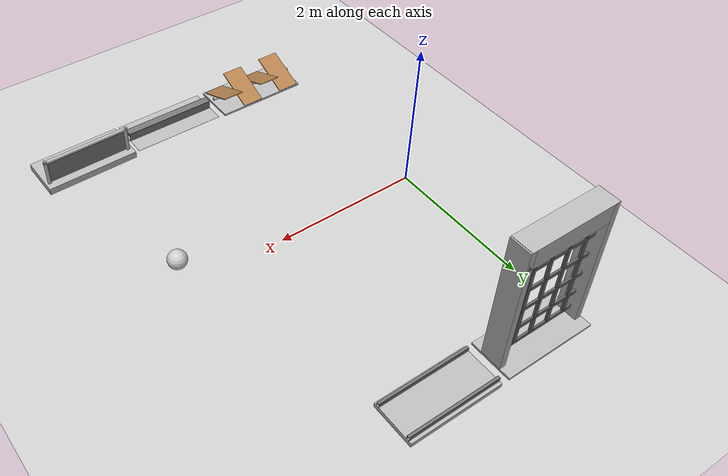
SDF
<sdf version="1.5">
 <world name="default">
  <include><uri>model://ball</uri><pose>3.29 -0.31 0.197 0 0 0</pose></include>
  <model name="ground_plane">
   <static>1</static>
   <link name="link">
    <collision name="collision">
     <geometry><plane><normal>0 0 1</normal><size>100 100</size></plane></geometry>
     <surface><friction><ode><mu>100</mu><mu2>50</mu2></ode></friction></surface>
    </collision>
    <visual name="visual">
     <cast_shadows>0</cast_shadows>
     <geometry><plane><normal>0 0 1</normal><size>100 100</size></plane></geometry>
     <material>
      <script><uri>file://media/materials/scripts/gazebo.material</uri><name>Gazebo/Grey</name></script>
     </material>
    </visual>
   </link>
  </model>
  <model name="frc2016_rockwall">
   <pose>2.0377 -2.705 0.027 0 0 0</pose>
   <static>1</static>
   <link name="link">
    <inertial>
     <mass>10</mass>
     <inertia><ixx>0.327091</ixx><ixy>0</ixy><ixz>0</ixz><iyy>1.37417</iyy><iyz>0</iyz><izz>1.64109</izz></inertia>
    </inertial>
    <visual name="platform">
     <pose>0 0 0.06432 0 -0 0</pose>
     <geometry><box><size>1.27 0.5969 0.003175</size></box></geometry>
    </visual>
    <collision name="platform">
     <pose>0 0 0.06432 0 -0 0</pose>
     <geometry><box><size>1.27 0.5969 0.003175</size></box></geometry>
    </collision>
    <visual name="up1">
     <pose>0 0.05166 0.12537 0 -0 0</pose>
     <geometry><box><size>1.27 0.00462 0.11892</size></box></geometry>
     <material><ambient>0.46 0.46 0.46 1</ambient><diffuse>0.46 0.46 0.46 1</diffuse></material>
    </visual>
    <collision name="up1">
     <pose>0 0.05166 0.12537 0 -0 0</pose>
     <geometry><box><size>1.27 0.00462 0.11892</size></box></geometry>
    </collision>
    <visual name="up2">
     <pose>0 -0.05801 0.12537 0 -0 0</pose>
     <geometry><box><size>1.27 0.00462 0.11892</size></box></geometry>
     <material><ambient>0.46 0.46 0.46 1</ambient><diffuse>0.46 0.46 0.46 1</diffuse></material>
    </visual>
    <collision name="up2">
     <pose>0 -0.05801 0.12537 0 -0 0</pose>
     <geometry><box><size>1.27 0.00462 0.11892</size></box></geometry>
    </collision>
    <visual name="top">
     <pose>0 -0.00249 0.18252 0 -0 0</pose>
     <geometry><box><size>1.27 0.1143 0.00462</size></box></geometry>
     <material><ambient>0.46 0.46 0.46 1</ambient><diffuse>0.46 0.46 0.46 1</diffuse></material>
    </visual>
    <collision name="top">
     <pose>0 -0.00249 0.18252 0 -0 0</pose>
     <geometry><box><size>1.27 0.1143 0.00462</size></box></geometry>
    </collision>
   </link>
   <pose>-0.584117 1 0 0 -0 0</pose>
  </model>
  <model name="frc2016_moat">
   <static>1</static>
   <pose>1.93647 2.80928 -0.019486 0 -0 0</pose>
   <link name="link">
    <inertial>
     <mass>10</mass>
     <pose>0 0 0.06738 0 -0 0</pose>
     <inertia><ixx>0.312195</ixx><ixy>0</ixy><ixz>0</ixz><iyy>1.35927</iyy><iyz>0</iyz><izz>1.64109</izz></inertia>
    </inertial>
    <visual name="platform">
     <pose>0 0 0.0381 0 -0 0</pose>
     <geometry><box><size>1.27 0.5969 0.0762</size></box></geometry>
    </visual>
    <collision name="platform">
     <pose>0 0 0.0381 0 -0 0</pose>
     <geometry><box><size>1.27 0.5969 0.0762</size></box></geometry>
    </collision>
    <visual name="tube1_side1">
     <pose>0 -0.25876 0.10301 0 -0 0</pose>
     <geometry><box><size>1.27 0.003175 0.0635</size></box></geometry>
     <material><ambient>0.46 0.46 0.46 1</ambient><diffuse>0.46 0.46 0.46 1</diffuse></material>
    </visual>
    <collision name="tube1_side1">
     <pose>0 -0.25876 0.10301 0 -0 0</pose>
     <geometry><box><size>1.27 0.003175 0.0635</size></box></geometry>
    </collision>
    <visual name="tube1_side2">
     <pose>0 -0.22384 0.10301 0 -0 0</pose>
     <geometry><box><size>1.27 0.003175 0.0635</size></box></geometry>
     <material><ambient>0.46 0.46 0.46 1</ambient><diffuse>0.46 0.46 0.46 1</diffuse></material>
    </visual>
    <collision name="tube1_side2">
     <pose>0 -0.22384 0.10301 0 -0 0</pose>
     <geometry><box><size>1.27 0.003175 0.0635</size></box></geometry>
    </collision>
    <visual name="tube1_top">
     <pose>0 -0.2413 0.13317 0 -0 0</pose>
     <geometry><box><size>1.27 0.0381 0.003175</size></box></geometry>
     <material><ambient>0.46 0.46 0.46 1</ambient><diffuse>0.46 0.46 0.46 1</diffuse></material>
    </visual>
    <collision name="tube1_top">
     <pose>0 -0.2413 0.13317 0 -0 0</pose>
     <geometry><box><size>1.27 0.0381 0.003175</size></box></geometry>
    </collision>
    <visual name="tube2_side1">
     <pose>0 0.22384 0.10301 0 -0 0</pose>
     <geometry><box><size>1.27 0.003175 0.0635</size></box></geometry>
     <material><ambient>0.46 0.46 0.46 1</ambient><diffuse>0.46 0.46 0.46 1</diffuse></material>
    </visual>
    <collision name="tube2_side1">
     <pose>0 0.22384 0.10301 0 -0 0</pose>
     <geometry><box><size>1.27 0.003175 0.0635</size></box></geometry>
    </collision>
    <visual name="tube2_side2">
     <pose>0 0.25876 0.10301 0 -0 0</pose>
     <geometry><box><size>1.27 0.003175 0.0635</size></box></geometry>
     <material><ambient>0.46 0.46 0.46 1</ambient><diffuse>0.46 0.46 0.46 1</diffuse></material>
    </visual>
    <collision name="tube2_side2">
     <pose>0 0.25876 0.10301 0 -0 0</pose>
     <geometry><box><size>1.27 0.003175 0.0635</size></box></geometry>
    </collision>
    <visual name="tube2_top">
     <pose>0 0.2413 0.13317 0 -0 0</pose>
     <geometry><box><size>1.27 0.0381 0.003175</size></box></geometry>
     <material><ambient>0.46 0.46 0.46 1</ambient><diffuse>0.46 0.46 0.46 1</diffuse></material>
    </visual>
    <collision name="tube2_top">
     <pose>0 0.2413 0.13317 0 -0 0</pose>
     <geometry><box><size>1.27 0.0381 0.003175</size></box></geometry>
    </collision>
   </link>
   <pose>1.49502 1 0 0 -0 0</pose>
  </model>
  <model name="frc2016_portcullis_0">
   <pose>0.5785 2.827 0 0 0 0.0</pose>
   <link name="base">
    <inertial>
     <mass>50</mass>
     <pose>0 0 1.02941 0 -0 0</pose>
     <inertia><ixx>3.81711</ixx><ixy>0</ixy><ixz>0</ixz><iyy>4.87698</iyy><iyz>0</iyz><izz>1.6283</izz></inertia>
    </inertial>
    <visual name="platform">
     <pose>0 0 0.07284 0 -0 0</pose>
     <geometry><box><size>1.27 0.5842 0.03</size></box></geometry>
    </visual>
    <collision name="platform">
     <pose>0 0 0.07284 0 -0 0</pose>
     <geometry><box><size>1.27 0.5842 0.03</size></box></geometry>
    </collision>
    <visual name="left_column">
     <pose>0.59284 0 0.99042 0 -0 0</pose>
     <geometry><box><size>0.08375 0.28575 1.83198</size></box></geometry>
    </visual>
    <collision name="left_column">
     <pose>0.59284 0 0.99042 0 -0 0</pose>
     <geometry><box><size>0.08375 0.28575 1.83198</size></box></geometry>
    </collision>
    <visual name="right_column">
     <pose>-0.57759 0 0.99042 0 -0 0</pose>
     <geometry><box><size>0.08375 0.28575 1.83198</size></box></geometry>
    </visual>
    <collision name="right_column">
     <pose>-0.57759 0 0.99042 0 -0 0</pose>
     <geometry><box><size>0.08375 0.28575 1.83198</size></box></geometry>
    </collision>
    <visual name="top">
     <pose>-0.00034 0 1.77722 0 -0 0</pose>
     <geometry><box><size>1.22962 0.28575 0.26657</size></box></geometry>
    </visual>
    <collision name="top">
     <pose>-0.00034 0 1.77722 0 -0 0</pose>
     <geometry><box><size>1.22962 0.28575 0.26657</size></box></geometry>
    </collision>
    <visual name="castor1">
     <pose>-0.45651 -0.16234 0.03272 0 -0 0</pose>
     <geometry><sphere><radius>0.03272</radius></sphere></geometry>
    </visual>
    <collision name="castor1">
     <pose>-0.45651 -0.16234 0.03272 0 -0 0</pose>
     <geometry><sphere><radius>0.03272</radius></sphere></geometry>
    </collision>
    <visual name="castor2">
     <pose>-0.27883 0.21836 0.03272 0 -0 0</pose>
     <geometry><sphere><radius>0.03272</radius></sphere></geometry>
    </visual>
    <collision name="castor2">
     <pose>-0.27883 0.21836 0.03272 0 -0 0</pose>
     <geometry><sphere><radius>0.03272</radius></sphere></geometry>
    </collision>
    <visual name="castor3">
     <pose>0.28083 0.21906 0.03272 0 -0 0</pose>
     <geometry><sphere><radius>0.03272</radius></sphere></geometry>
    </visual>
    <collision name="castor3">
     <pose>0.28083 0.21906 0.03272 0 -0 0</pose>
     <geometry><sphere><radius>0.03272</radius></sphere></geometry>
    </collision>
    <visual name="castor4">
     <pose>0.45871 -0.16186 0.03272 0 -0 0</pose>
     <geometry><sphere><radius>0.03272</radius></sphere></geometry>
    </visual>
    <collision name="castor4">
     <pose>0.45871 -0.16186 0.03272 0 -0 0</pose>
     <geometry><sphere><radius>0.03272</radius></sphere></geometry>
    </collision>
   </link>
   <link name="gate">
    <pose>-0.0287 0.02885 0.93327 0 -0 0</pose>
    <inertial>
     <mass>2</mass>
     <inertia><ixx>3.81711</ixx><ixy>0</ixy><ixz>0</ixz><iyy>4.87698</iyy><iyz>0</iyz><izz>1.6283</izz></inertia>
    </inertial>
    <collision name="collision"><geometry><box><size>1.1938 0.02496 1.45732</size></box></geometry></collision>
    <visual name="horz_1">
     <pose>0 0 -0.70326 0 -0 0</pose>
     <geometry><box><size>1.1938 0.02496 0.0508</size></box></geometry>
     <material><ambient>0.4 0.4 0.4 1</ambient><diffuse>0.4 0.4 0.4 1</diffuse></material>
    </visual>
    <visual name="horz_2">
     <pose>0 0 -0.44926 0 -0 0</pose>
     <geometry><box><size>1.1938 0.02496 0.0508</size></box></geometry>
     <material><ambient>0.4 0.4 0.4 1</ambient><diffuse>0.4 0.4 0.4 1</diffuse></material>
    </visual>
    <visual name="horz_3">
     <pose>0 0 -0.14517 0 -0 0</pose>
     <geometry><box><size>1.1938 0.02496 0.0508</size></box></geometry>
     <material><ambient>0.4 0.4 0.4 1</ambient><diffuse>0.4 0.4 0.4 1</diffuse></material>
    </visual>
    <visual name="horz_4">
     <pose>0 0 0.16034 0 -0 0</pose>
     <geometry><box><size>1.1938 0.02496 0.0508</size></box></geometry>
     <material><ambient>0.4 0.4 0.4 1</ambient><diffuse>0.4 0.4 0.4 1</diffuse></material>
    </visual>
    <visual name="horz_5">
     <pose>0 0 0.46514 0 -0 0</pose>
     <geometry><box><size>1.1938 0.02496 0.0508</size></box></geometry>
     <material><ambient>0.4 0.4 0.4 1</ambient><diffuse>0.4 0.4 0.4 1</diffuse></material>
    </visual>
    <visual name="horz_6">
     <pose>0 0 0.72994 0 -0 0</pose>
     <geometry><box><size>1.1938 0.02496 0.0508</size></box></geometry>
     <material><ambient>0.4 0.4 0.4 1</ambient><diffuse>0.4 0.4 0.4 1</diffuse></material>
    </visual>
    <visual name="vert_1">
     <pose>-0.58448 0 0 0 -0 0</pose>
     <geometry><box><size>0.02495 0.02496 1.45732</size></box></geometry>
     <material><ambient>0.4 0.4 0.4 1</ambient><diffuse>0.4 0.4 0.4 1</diffuse></material>
    </visual>
    <visual name="vert_2">
     <pose>-0.38128 0 0 0 -0 0</pose>
     <geometry><box><size>0.0508 0.02496 1.45732</size></box></geometry>
     <material><ambient>0.4 0.4 0.4 1</ambient><diffuse>0.4 0.4 0.4 1</diffuse></material>
    </visual>
    <visual name="vert_3">
     <pose>-0.12728 0 0 0 -0 0</pose>
     <geometry><box><size>0.0508 0.02496 1.45732</size></box></geometry>
     <material><ambient>0.4 0.4 0.4 1</ambient><diffuse>0.4 0.4 0.4 1</diffuse></material>
    </visual>
    <visual name="vert_4">
     <pose>0.12672 0 0 0 -0 0</pose>
     <geometry><box><size>0.0508 0.02496 1.45732</size></box></geometry>
     <material><ambient>0.4 0.4 0.4 1</ambient><diffuse>0.4 0.4 0.4 1</diffuse></material>
    </visual>
    <visual name="vert_5">
     <pose>0.38072 0 0 0 -0 0</pose>
     <geometry><box><size>0.0508 0.02496 1.45732</size></box></geometry>
     <material><ambient>0.4 0.4 0.4 1</ambient><diffuse>0.4 0.4 0.4 1</diffuse></material>
    </visual>
    <visual name="vert_6">
     <pose>0.58392 0 0 0 -0 0</pose>
     <geometry><box><size>0.02495 0.02496 1.45732</size></box></geometry>
     <material><ambient>0.4 0.4 0.4 1</ambient><diffuse>0.4 0.4 0.4 1</diffuse></material>
    </visual>
   </link>
   <joint name="joint" type="prismatic">
    <parent>base</parent>
    <child>gate</child>
    <axis>
     <xyz>0 0 1</xyz>
     <limit><lower>0</lower><upper>1</upper></limit>
     <use_parent_model_frame>0</use_parent_model_frame>
     <dynamics><spring_reference>0</spring_reference><spring_stiffness>0.2</spring_stiffness></dynamics>
    </axis>
   </joint>
   <pose>1 -3 0 0 -0 0</pose>
  </model>
  <model name="frc2016_chevaldefrise">
   <pose>0.6666 -2.704 -0 0 0 -1e-06</pose>
   <link name="base">
    <inertial>
     <mass>10</mass>
     <pose>0 0 0.15672 0 -0 0</pose>
     <inertia><ixx>0.380221</ixx><ixy>0</ixy><ixz>0</ixz><iyy>1.43365</iyy><iyz>0</iyz><izz>1.64745</izz></inertia>
    </inertial>
    <visual name="platform">
     <pose>0 0 0.073 0 -0 0</pose>
     <geometry><box><size>1.27 0.5969 0.03</size></box></geometry>
    </visual>
    <collision name="platform">
     <pose>0 0 0.073 0 -0 0</pose>
     <geometry><box><size>1.27 0.5969 0.03</size></box></geometry>
    </collision>
    <visual name="bar">
     <pose>0 0 0.16855 0 1.5707 0</pose>
     <geometry><cylinder><radius>0.02108</radius><length>1.273</length></cylinder></geometry>
    </visual>
    <collision name="bar">
     <pose>0 0 0.16855 0 1.5707 0</pose>
     <geometry><cylinder><radius>0.02108</radius><length>1.27</length></cylinder></geometry>
    </collision>
    <visual name="castor1">
     <pose>-0.45653 -0.16581 0.03175 0 -0 0</pose>
     <geometry><sphere><radius>0.03175</radius></sphere></geometry>
    </visual>
    <collision name="castor1">
     <pose>-0.45653 -0.16581 0.03175 0 -0 0</pose>
     <geometry><sphere><radius>0.03175</radius></sphere></geometry>
    </collision>
    <visual name="castor2">
     <pose>-0.27855 0.21408 0.03175 0 -0 0</pose>
     <geometry><sphere><radius>0.03175</radius></sphere></geometry>
    </visual>
    <collision name="castor2">
     <pose>-0.27855 0.21408 0.03175 0 -0 0</pose>
     <geometry><sphere><radius>0.03175</radius></sphere></geometry>
    </collision>
    <visual name="castor3">
     <pose>0.28191 0.21419 0.03175 0 -0 0</pose>
     <geometry><sphere><radius>0.03175</radius></sphere></geometry>
    </visual>
    <collision name="castor3">
     <pose>0.28191 0.21419 0.03175 0 -0 0</pose>
     <geometry><sphere><radius>0.03175</radius></sphere></geometry>
    </collision>
    <visual name="castor4">
     <pose>0.45965 -0.16602 0.03175 0 -0 0</pose>
     <geometry><sphere><radius>0.03175</radius></sphere></geometry>
    </visual>
    <collision name="castor4">
     <pose>0.45965 -0.16602 0.03175 0 -0 0</pose>
     <geometry><sphere><radius>0.03175</radius></sphere></geometry>
    </collision>
   </link>
   <link name="slant1">
    <pose>-0.4572 0.01307 0.1997 -0.39732 0 0</pose>
    <inertial>
     <pose>0 0.1 0 0 -0 0</pose>
     <mass>2</mass>
     <inertia>
      <ixx>0.0606857</ixx>
      <ixy>0</ixy>
      <ixz>0</ixz>
      <iyy>0.0148723</iyy>
      <iyz>0</iyz>
      <izz>0.0755042</izz>
     </inertia>
    </inertial>
    <visual name="visual">
     <geometry><box><size>0.29845 0.593285 0.0127</size></box></geometry>
     <material><script><name>Gazebo/WoodFloor</name><uri>__default__</uri></script></material>
    </visual>
    <collision name="collision"><geometry><box><size>0.29845 0.593285 0.0127</size></box></geometry></collision>
   </link>
   <link name="slant2">
    <pose>-0.1524 -0.01307 0.1997 0.39732 -0 0</pose>
    <inertial>
     <mass>2</mass>
     <pose>0 -0.1 0 0 -0 0</pose>
     <inertia>
      <ixx>0.0606857</ixx>
      <ixy>0</ixy>
      <ixz>0</ixz>
      <iyy>0.0148723</iyy>
      <iyz>0</iyz>
      <izz>0.0755042</izz>
     </inertia>
    </inertial>
    <visual name="visual">
     <geometry><box><size>0.29845 0.593285 0.0127</size></box></geometry>
     <material><script><name>Gazebo/WoodFloor</name><uri>__default__</uri></script></material>
    </visual>
    <collision name="collision"><geometry><box><size>0.29845 0.593285 0.0127</size></box></geometry></collision>
   </link>
   <link name="slant3">
    <pose>0.1524 0.01307 0.1997 -0.39732 0 0</pose>
    <inertial>
     <pose>0 0.1 0 0 -0 0</pose>
     <mass>2</mass>
     <inertia>
      <ixx>0.0606857</ixx>
      <ixy>0</ixy>
      <ixz>0</ixz>
      <iyy>0.0148723</iyy>
      <iyz>0</iyz>
      <izz>0.0755042</izz>
     </inertia>
    </inertial>
    <visual name="visual">
     <geometry><box><size>0.29845 0.593285 0.0127</size></box></geometry>
     <material><script><name>Gazebo/WoodFloor</name><uri>__default__</uri></script></material>
    </visual>
    <collision name="collision"><geometry><box><size>0.29845 0.593285 0.0127</size></box></geometry></collision>
   </link>
   <link name="slant4">
    <pose>0.4572 -0.01307 0.1997 0.39732 -0 0</pose>
    <inertial>
     <pose>0 -0.1 0 0 -0 0</pose>
     <mass>2</mass>
     <inertia>
      <ixx>0.0606857</ixx>
      <ixy>0</ixy>
      <ixz>0</ixz>
      <iyy>0.0148723</iyy>
      <iyz>0</iyz>
      <izz>0.0755042</izz>
     </inertia>
    </inertial>
    <visual name="visual">
     <geometry><box><size>0.29845 0.593285 0.0127</size></box></geometry>
     <material><script><name>Gazebo/WoodFloor</name><uri>__default__</uri></script></material>
    </visual>
    <collision name="collision"><geometry><box><size>0.29845 0.593285 0.0127</size></box></geometry></collision>
   </link>
   <joint name="slant1_joint" type="revolute">
    <parent>base</parent>
    <child>slant1</child>
    <axis>
     <xyz>1 0 0</xyz>
     <limit><lower>0</lower><upper>1.5707</upper></limit>
     <use_parent_model_frame>0</use_parent_model_frame>
     <dynamics><spring_reference>0</spring_reference><spring_stiffness>0</spring_stiffness></dynamics>
    </axis>
   </joint>
   <joint name="slant2_joint" type="revolute">
    <parent>base</parent>
    <child>slant2</child>
    <axis>
     <xyz>1 0 0</xyz>
     <limit><lower>-1.5707</lower><upper>0</upper></limit>
     <use_parent_model_frame>0</use_parent_model_frame>
     <dynamics><spring_reference>0</spring_reference><spring_stiffness>0</spring_stiffness></dynamics>
    </axis>
   </joint>
   <joint name="slant3_joint" type="revolute">
    <parent>base</parent>
    <child>slant3</child>
    <axis>
     <xyz>1 0 0</xyz>
     <limit><lower>0</lower><upper>1.5707</upper></limit>
     <use_parent_model_frame>0</use_parent_model_frame>
     <dynamics><spring_reference>0</spring_reference><spring_stiffness>0</spring_stiffness></dynamics>
    </axis>
   </joint>
   <joint name="slant4_joint" type="revolute">
    <parent>base</parent>
    <child>slant4</child>
    <axis>
     <xyz>1 0 0</xyz>
     <limit><lower>-1.5707</lower><upper>0</upper></limit>
     <use_parent_model_frame>0</use_parent_model_frame>
     <dynamics><spring_reference>0</spring_reference><spring_stiffness>0</spring_stiffness></dynamics>
    </axis>
   </joint>
   <pose>2 -2.57476 0 0 -0 0</pose>
  </model>
  <model name="frc2016_lowbar">
   <pose>3.35425 -2.70931 -9e-06 -1.3e-05 2e-05 -3.12606</pose>
   <link name="base">
    <inertial>
     <mass>50</mass>
     <inertia>
      <ixx>0.035543</ixx>
      <ixy>0</ixy>
      <ixz>0</ixz>
      <iyy>0.134412</iyy>
      <iyz>0</iyz>
      <izz>0.165376</izz>
     </inertia>
    </inertial>
    <visual name="platform">
     <pose>0 0 0.039065 0 -0 0</pose>
     <geometry><box><size>1.27 0.60 0.1</size></box></geometry>
    </visual>
    <collision name="platform">
     <pose>0 0 0.039065 0 -0 0</pose>
     <geometry><box><size>1.27 0.60 0.1</size></box></geometry>
    </collision>
    <visual name="right_column">
     <pose>-0.57845 -0.18464 0.26863 0 -0 0</pose>
     <geometry><cylinder><radius>0.0254</radius><length>0.381</length></cylinder></geometry>
    </visual>
    <collision name="right_column">
     <pose>-0.57845 -0.18464 0.26863 0 -0 0</pose>
     <geometry><cylinder><radius>0.0254</radius><length>0.381</length></cylinder></geometry>
    </collision>
    <visual name="left_column">
     <pose>0.57845 -0.18464 0.26863 0 -0 0</pose>
     <geometry><cylinder><radius>0.0254</radius><length>0.381</length></cylinder></geometry>
    </visual>
    <collision name="left_column">
     <pose>0.57845 -0.18464 0.26863 0 -0 0</pose>
     <geometry><cylinder><radius>0.0254</radius><length>0.381</length></cylinder></geometry>
    </collision>
    <visual name="horizontal">
     <pose>0 -0.18464 0.43556 0 1.5707 0</pose>
     <geometry><cylinder><radius>0.0254</radius><length>1.2018</length></cylinder></geometry>
    </visual>
    <collision name="horizontal">
     <pose>0 -0.18464 0.43556 0 1.5707 0</pose>
     <geometry><cylinder><radius>0.0254</radius><length>1.2018</length></cylinder></geometry>
    </collision>
   </link>
   <link name="wall">
    <pose>0 -0.1778 0.24323 0 -0 0</pose>
    <inertial>
     <mass>1</mass>
     <inertia>
      <ixx>0.00774528</ixx>
      <ixy>0</ixy>
      <ixz>0</ixz>
      <iyy>0.116613</iyy>
      <iyz>0</iyz>
      <izz>0.108874</izz>
     </inertia>
    </inertial>
    <visual name="visual">
     <geometry><box><size>1.1176 0.00635 0.3</size></box></geometry>
     <material><ambient>0.46 0.46 0.46 1</ambient><diffuse>0.46 0.46 0.46 1</diffuse></material>
    </visual>
    <collision name="collision"><geometry><box><size>1.143 0.00635 0.3</size></box></geometry></collision>
   </link>
   <joint name="bar_joint" type="revolute">
    <pose>0 0 0.37 0 -0 0</pose>
    <parent>base</parent>
    <child>wall</child>
    <axis>
     <xyz>1 0 0</xyz>
     <limit><lower>-1.5707</lower><upper>1.5707</upper></limit>
     <use_parent_model_frame>0</use_parent_model_frame>
     <dynamics>
      <damping>1</damping>
      <friction>1</friction>
      <spring_reference>0</spring_reference>
      <spring_stiffness>0</spring_stiffness>
     </dynamics>
    </axis>
   </joint>
   <pose>3 -1 0 0 -0 0</pose>
  </model>
 </world>
</sdf>
